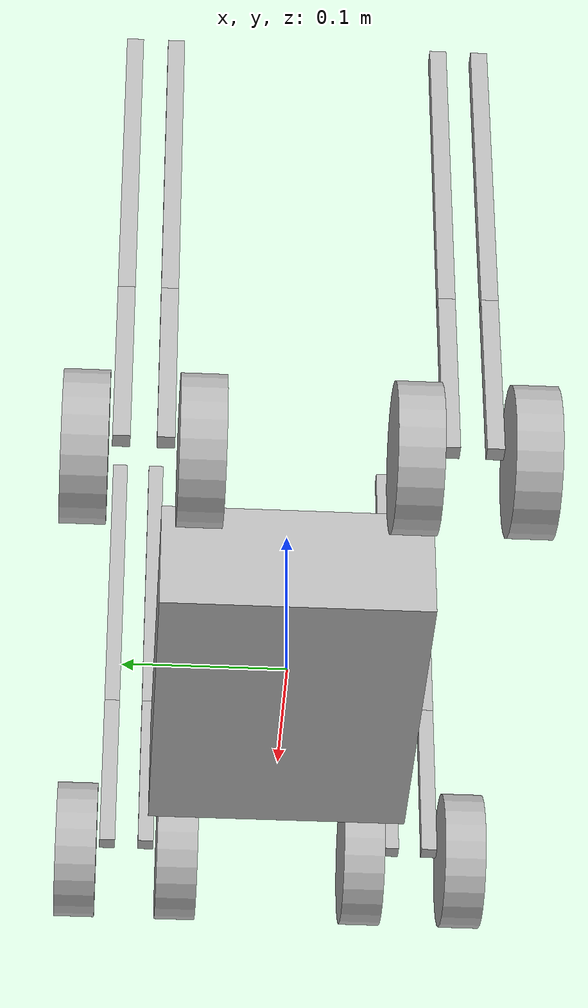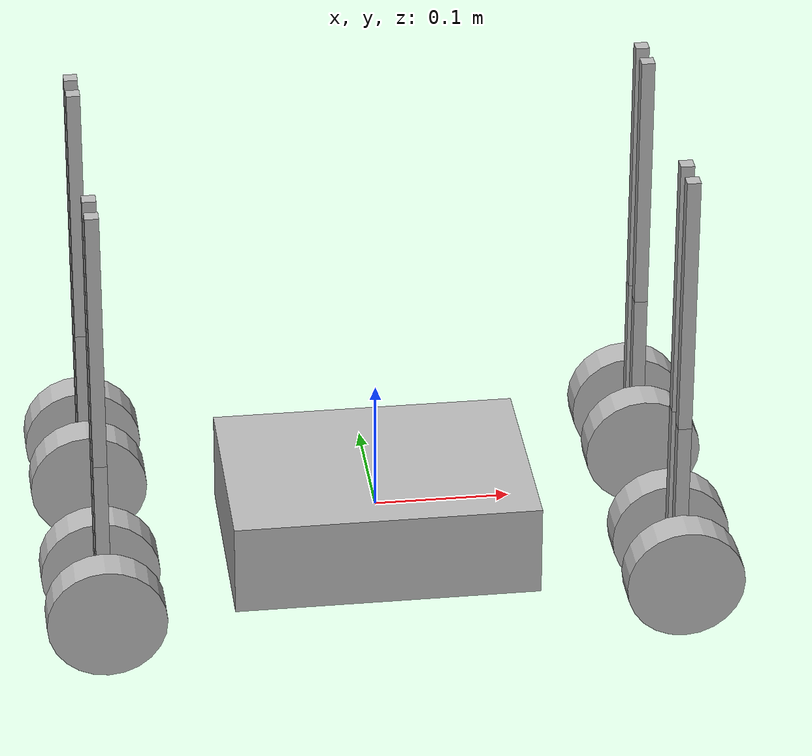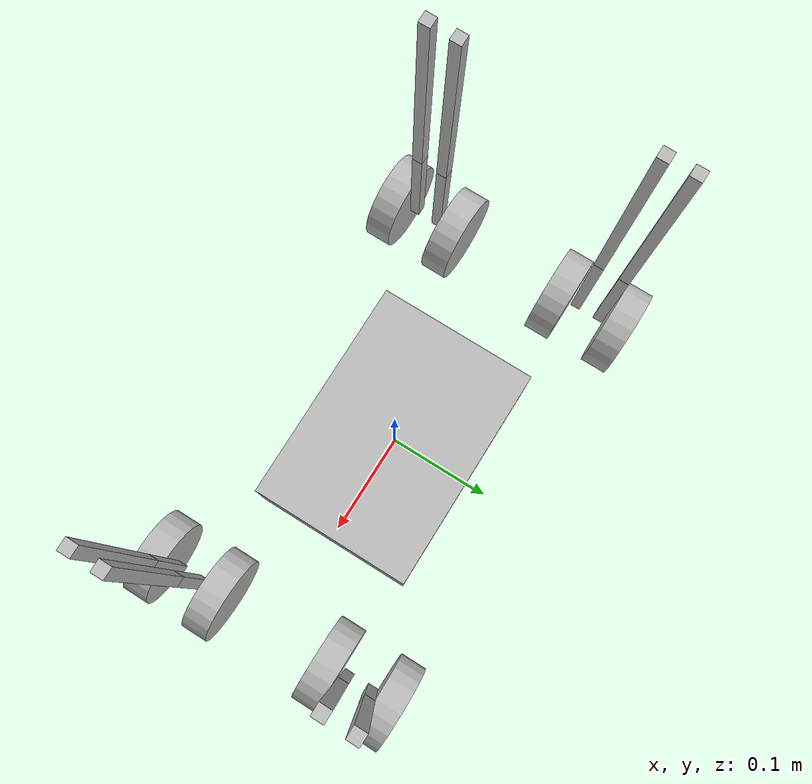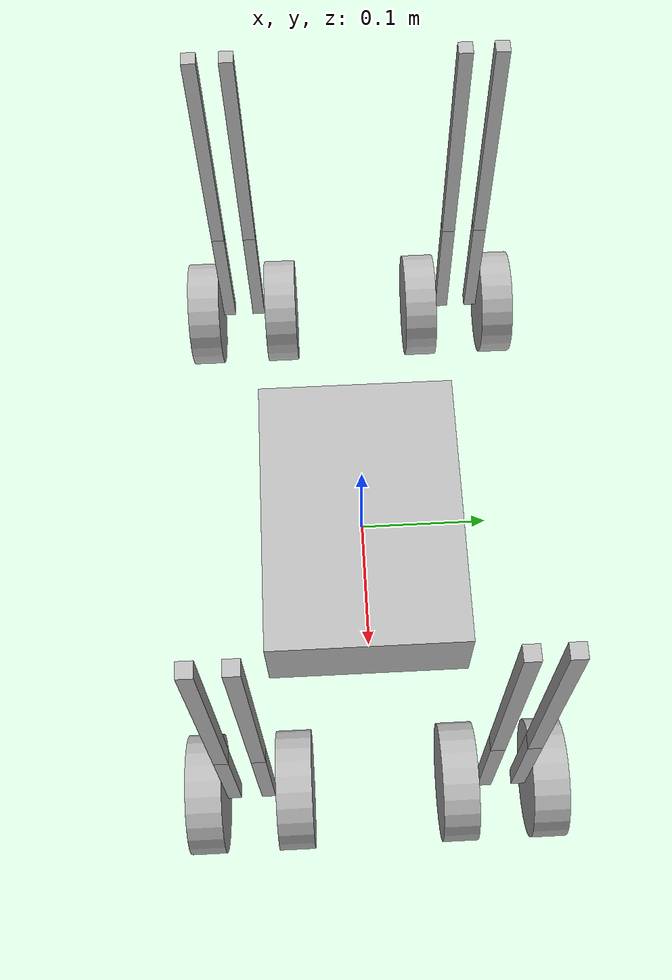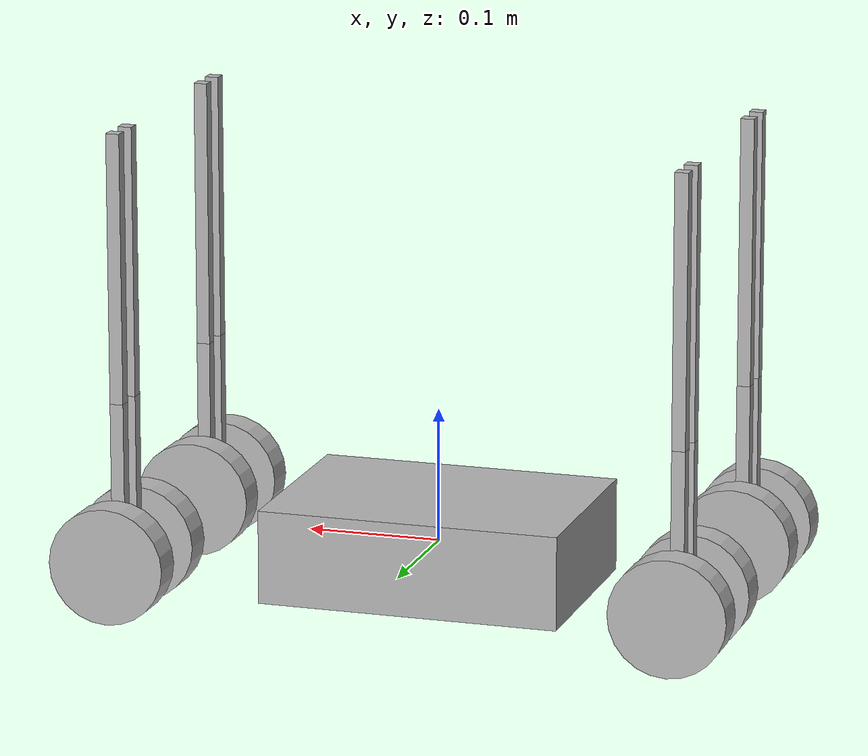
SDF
<sdf version='1.7'>
  <model name='quadruped'>
    <link name='base_chassis_link'>
      <inertial>
        <pose>0 0 0 0 -0 0</pose>
        <mass>3.2</mass>
        <inertia>
          <ixx>1</ixx>
          <ixy>0</ixy>
          <ixz>0</ixz>
          <iyy>1</iyy>
          <iyz>0</iyz>
          <izz>1</izz>
        </inertia>
      </inertial>
      <collision name='base_chassis_link_collision'>
        <pose>0 0 0 0 -0 0</pose>
        <geometry>
          <box>
            <size>0.226 0.16 0.07</size>
          </box>
        </geometry>
      </collision>
      <visual name='base_chassis_link_visual'>
        <pose>0 0 0 0 -0 0</pose>
        <geometry>
          <box>
            <size>0.226 0.16 0.07</size>
          </box>
        </geometry>
      </visual>
    </link>
    <joint name='motor_back_leftL_joint' type='revolute'>
      <pose relative_to='base_chassis_link'>-0.21 0.06 0 1.57075 -0 0</pose>
      <parent>base_chassis_link</parent>
      <child>motor_back_leftL_link</child>
      <axis>
        <xyz>0 0 1</xyz>
        <limit>
          <effort>100</effort>
          <velocity>100</velocity>
          <lower>-1e+16</lower>
          <upper>1e+16</upper>
        </limit>
        <dynamics>
          <spring_reference>0</spring_reference>
          <spring_stiffness>0</spring_stiffness>
        </dynamics>
      </axis>
    </joint>
    <link name='motor_back_leftL_link'>
      <pose relative_to='motor_back_leftL_joint'>0 0 0 0 -0 0</pose>
      <inertial>
        <pose>0 0.01 -0.003333 0 -0 0</pose>
        <mass>0.3</mass>
        <inertia>
          <ixx>2.00017</ixx>
          <ixy>0</ixy>
          <ixz>0</ixz>
          <iyy>2.00002</iyy>
          <iyz>5e-05</iyz>
          <izz>2.00015</izz>
        </inertia>
      </inertial>
      <collision name='motor_back_leftL_link_collision'>
        <pose>0 0 0 0 -0 0</pose>
        <geometry>
          <cylinder>
            <length>0.026</length>
            <radius>0.0434</radius>
          </cylinder>
        </geometry>
      </collision>
      <collision name='motor_back_leftL_link_fixed_joint_lump__upper_leg_back_leftL_link_collision_1'>
        <pose>0 0.06 -0.02 -1.57075 0 0</pose>
        <geometry>
          <box>
            <size>0.01 0.01 0.11</size>
          </box>
        </geometry>
      </collision>
      <visual name='motor_back_leftL_link_visual'>
        <pose>0 0 0 0 -0 0</pose>
        <geometry>
          <cylinder>
            <length>0.026</length>
            <radius>0.0434</radius>
          </cylinder>
        </geometry>
      </visual>
      <visual name='motor_back_leftL_link_fixed_joint_lump__upper_leg_back_leftL_link_visual_1'>
        <pose>0 0.06 -0.02 -1.57075 0 0</pose>
        <geometry>
          <box>
            <size>0.01 0.01 0.11</size>
          </box>
        </geometry>
      </visual>
    </link>
    <joint name='knee_back_leftL_link' type='revolute'>
      <pose relative_to='motor_back_leftL_link'>0 0.115 -0.019997 -1.57075 0 0</pose>
      <parent>motor_back_leftL_link</parent>
      <child>lower_leg_back_leftL_link</child>
      <axis>
        <xyz>0 1 0</xyz>
        <limit>
          <lower>0</lower>
          <upper>0</upper>
          <effort>100</effort>
          <velocity>100</velocity>
        </limit>
        <dynamics>
          <spring_reference>0</spring_reference>
          <spring_stiffness>0</spring_stiffness>
        </dynamics>
      </axis>
    </joint>
    <link name='lower_leg_back_leftL_link'>
      <pose relative_to='knee_back_leftL_link'>0 0 0 0 -0 0</pose>
      <inertial>
        <pose>0 0 0 0 -0 0</pose>
        <mass>0.05</mass>
        <inertia>
          <ixx>1</ixx>
          <ixy>0</ixy>
          <ixz>0</ixz>
          <iyy>1</iyy>
          <iyz>0</iyz>
          <izz>1</izz>
        </inertia>
      </inertial>
      <collision name='lower_leg_back_leftL_link_collision'>
        <pose>0 0 0.1 0 -0 0</pose>
        <geometry>
          <box>
            <size>0.01 0.01 0.2</size>
          </box>
        </geometry>
      </collision>
      <visual name='lower_leg_back_leftL_link_visual'>
        <pose>0 0 0.1 0 -0 0</pose>
        <geometry>
          <box>
            <size>0.01 0.01 0.2</size>
          </box>
        </geometry>
      </visual>
    </link>
    <joint name='motor_back_leftR_joint' type='revolute'>
      <pose relative_to='base_chassis_link'>-0.21 0.125 0 1.57075 -0 0</pose>
      <parent>base_chassis_link</parent>
      <child>motor_back_leftR_link</child>
      <axis>
        <xyz>0 0 1</xyz>
        <limit>
          <effort>100</effort>
          <velocity>100</velocity>
          <lower>-1e+16</lower>
          <upper>1e+16</upper>
        </limit>
        <dynamics>
          <spring_reference>0</spring_reference>
          <spring_stiffness>0</spring_stiffness>
        </dynamics>
      </axis>
    </joint>
    <link name='motor_back_leftR_link'>
      <pose relative_to='motor_back_leftR_joint'>0 0 0 0 -0 0</pose>
      <inertial>
        <pose>0 0.01 0.003333 0 -0 0</pose>
        <mass>0.3</mass>
        <inertia>
          <ixx>2.00017</ixx>
          <ixy>0</ixy>
          <ixz>0</ixz>
          <iyy>2.00002</iyy>
          <iyz>-5e-05</iyz>
          <izz>2.00015</izz>
        </inertia>
      </inertial>
      <collision name='motor_back_leftR_link_collision'>
        <pose>0 0 0 0 -0 0</pose>
        <geometry>
          <cylinder>
            <length>0.026</length>
            <radius>0.0434</radius>
          </cylinder>
        </geometry>
      </collision>
      <collision name='motor_back_leftR_link_fixed_joint_lump__upper_leg_back_leftR_link_collision_1'>
        <pose>0 0.06 0.02 -1.57075 0 0</pose>
        <geometry>
          <box>
            <size>0.01 0.01 0.11</size>
          </box>
        </geometry>
      </collision>
      <visual name='motor_back_leftR_link_visual'>
        <pose>0 0 0 0 -0 0</pose>
        <geometry>
          <cylinder>
            <length>0.026</length>
            <radius>0.0434</radius>
          </cylinder>
        </geometry>
      </visual>
      <visual name='motor_back_leftR_link_fixed_joint_lump__upper_leg_back_leftR_link_visual_1'>
        <pose>0 0.06 0.02 -1.57075 0 0</pose>
        <geometry>
          <box>
            <size>0.01 0.01 0.11</size>
          </box>
        </geometry>
      </visual>
    </link>
    <joint name='knee_back_leftR_link' type='revolute'>
      <pose relative_to='motor_back_leftR_link'>0 0.115 0.020003 -1.57075 0 0</pose>
      <parent>motor_back_leftR_link</parent>
      <child>lower_leg_back_leftR_link</child>
      <axis>
        <xyz>0 1 0</xyz>
        <limit>
          <lower>0</lower>
          <upper>0</upper>
          <effort>100</effort>
          <velocity>100</velocity>
        </limit>
        <dynamics>
          <spring_reference>0</spring_reference>
          <spring_stiffness>0</spring_stiffness>
        </dynamics>
      </axis>
    </joint>
    <link name='lower_leg_back_leftR_link'>
      <pose relative_to='knee_back_leftR_link'>0 0 0 0 -0 0</pose>
      <inertial>
        <pose>0 0 0 0 -0 0</pose>
        <mass>0.05</mass>
        <inertia>
          <ixx>1</ixx>
          <ixy>0</ixy>
          <ixz>0</ixz>
          <iyy>1</iyy>
          <iyz>0</iyz>
          <izz>1</izz>
        </inertia>
      </inertial>
      <collision name='lower_leg_back_leftR_link_collision'>
        <pose>0 0 0.1 0 -0 0</pose>
        <geometry>
          <box>
            <size>0.01 0.01 0.2</size>
          </box>
        </geometry>
      </collision>
      <visual name='lower_leg_back_leftR_link_visual'>
        <pose>0 0 0.1 0 -0 0</pose>
        <geometry>
          <box>
            <size>0.01 0.01 0.2</size>
          </box>
        </geometry>
      </visual>
    </link>
    <joint name='motor_back_rightL_joint' type='revolute'>
      <pose relative_to='base_chassis_link'>-0.21 -0.06 0 1.57075 -0 0</pose>
      <parent>base_chassis_link</parent>
      <child>motor_back_rightL_link</child>
      <axis>
        <xyz>0 0 1</xyz>
        <limit>
          <effort>100</effort>
          <velocity>100</velocity>
          <lower>-1e+16</lower>
          <upper>1e+16</upper>
        </limit>
        <dynamics>
          <spring_reference>0</spring_reference>
          <spring_stiffness>0</spring_stiffness>
        </dynamics>
      </axis>
    </joint>
    <link name='motor_back_rightL_link'>
      <pose relative_to='motor_back_rightL_joint'>0 0 0 0 -0 0</pose>
      <inertial>
        <pose>0 0.01 0.003333 0 -0 0</pose>
        <mass>0.3</mass>
        <inertia>
          <ixx>2.00017</ixx>
          <ixy>0</ixy>
          <ixz>0</ixz>
          <iyy>2.00002</iyy>
          <iyz>-5e-05</iyz>
          <izz>2.00015</izz>
        </inertia>
      </inertial>
      <collision name='motor_back_rightL_link_collision'>
        <pose>0 0 0 0 -0 0</pose>
        <geometry>
          <cylinder>
            <length>0.026</length>
            <radius>0.0434</radius>
          </cylinder>
        </geometry>
      </collision>
      <collision name='motor_back_rightL_link_fixed_joint_lump__upper_leg_back_rightL_link_collision_1'>
        <pose>0 0.06 0.02 -1.57075 0 0</pose>
        <geometry>
          <box>
            <size>0.01 0.01 0.11</size>
          </box>
        </geometry>
      </collision>
      <visual name='motor_back_rightL_link_visual'>
        <pose>0 0 0 0 -0 0</pose>
        <geometry>
          <cylinder>
            <length>0.026</length>
            <radius>0.0434</radius>
          </cylinder>
        </geometry>
      </visual>
      <visual name='motor_back_rightL_link_fixed_joint_lump__upper_leg_back_rightL_link_visual_1'>
        <pose>0 0.06 0.02 -1.57075 0 0</pose>
        <geometry>
          <box>
            <size>0.01 0.01 0.11</size>
          </box>
        </geometry>
      </visual>
    </link>
    <joint name='knee_back_rightL_link' type='revolute'>
      <pose relative_to='motor_back_rightL_link'>0 0.115 0.020003 -1.57075 0 0</pose>
      <parent>motor_back_rightL_link</parent>
      <child>lower_leg_back_rightL_link</child>
      <axis>
        <xyz>0 1 0</xyz>
        <limit>
          <lower>0</lower>
          <upper>0</upper>
          <effort>100</effort>
          <velocity>100</velocity>
        </limit>
        <dynamics>
          <spring_reference>0</spring_reference>
          <spring_stiffness>0</spring_stiffness>
        </dynamics>
      </axis>
    </joint>
    <link name='lower_leg_back_rightL_link'>
      <pose relative_to='knee_back_rightL_link'>0 0 0 0 -0 0</pose>
      <inertial>
        <pose>0 0 0 0 -0 0</pose>
        <mass>0.05</mass>
        <inertia>
          <ixx>1</ixx>
          <ixy>0</ixy>
          <ixz>0</ixz>
          <iyy>1</iyy>
          <iyz>0</iyz>
          <izz>1</izz>
        </inertia>
      </inertial>
      <collision name='lower_leg_back_rightL_link_collision'>
        <pose>0 0 0.1 0 -0 0</pose>
        <geometry>
          <box>
            <size>0.01 0.01 0.2</size>
          </box>
        </geometry>
      </collision>
      <visual name='lower_leg_back_rightL_link_visual'>
        <pose>0 0 0.1 0 -0 0</pose>
        <geometry>
          <box>
            <size>0.01 0.01 0.2</size>
          </box>
        </geometry>
      </visual>
    </link>
    <joint name='motor_back_rightR_joint' type='revolute'>
      <pose relative_to='base_chassis_link'>-0.21 -0.125 0 1.57075 -0 0</pose>
      <parent>base_chassis_link</parent>
      <child>motor_back_rightR_link</child>
      <axis>
        <xyz>0 0 1</xyz>
        <limit>
          <effort>100</effort>
          <velocity>100</velocity>
          <lower>-1e+16</lower>
          <upper>1e+16</upper>
        </limit>
        <dynamics>
          <spring_reference>0</spring_reference>
          <spring_stiffness>0</spring_stiffness>
        </dynamics>
      </axis>
    </joint>
    <link name='motor_back_rightR_link'>
      <pose relative_to='motor_back_rightR_joint'>0 0 0 0 -0 0</pose>
      <inertial>
        <pose>0 0.01 -0.003333 0 -0 0</pose>
        <mass>0.3</mass>
        <inertia>
          <ixx>2.00017</ixx>
          <ixy>0</ixy>
          <ixz>0</ixz>
          <iyy>2.00002</iyy>
          <iyz>5e-05</iyz>
          <izz>2.00015</izz>
        </inertia>
      </inertial>
      <collision name='motor_back_rightR_link_collision'>
        <pose>0 0 0 0 -0 0</pose>
        <geometry>
          <cylinder>
            <length>0.026</length>
            <radius>0.0434</radius>
          </cylinder>
        </geometry>
      </collision>
      <collision name='motor_back_rightR_link_fixed_joint_lump__upper_leg_back_rightR_link_collision_1'>
        <pose>0 0.06 -0.02 -1.57075 0 0</pose>
        <geometry>
          <box>
            <size>0.01 0.01 0.11</size>
          </box>
        </geometry>
      </collision>
      <visual name='motor_back_rightR_link_visual'>
        <pose>0 0 0 0 -0 0</pose>
        <geometry>
          <cylinder>
            <length>0.026</length>
            <radius>0.0434</radius>
          </cylinder>
        </geometry>
      </visual>
      <visual name='motor_back_rightR_link_fixed_joint_lump__upper_leg_back_rightR_link_visual_1'>
        <pose>0 0.06 -0.02 -1.57075 0 0</pose>
        <geometry>
          <box>
            <size>0.01 0.01 0.11</size>
          </box>
        </geometry>
      </visual>
    </link>
    <joint name='knee_back_rightR_link' type='revolute'>
      <pose relative_to='motor_back_rightR_link'>0 0.115 -0.019997 -1.57075 0 0</pose>
      <parent>motor_back_rightR_link</parent>
      <child>lower_leg_back_rightR_link</child>
      <axis>
        <xyz>0 1 0</xyz>
        <limit>
          <lower>0</lower>
          <upper>0</upper>
          <effort>100</effort>
          <velocity>100</velocity>
        </limit>
        <dynamics>
          <spring_reference>0</spring_reference>
          <spring_stiffness>0</spring_stiffness>
        </dynamics>
      </axis>
    </joint>
    <link name='lower_leg_back_rightR_link'>
      <pose relative_to='knee_back_rightR_link'>0 0 0 0 -0 0</pose>
      <inertial>
        <pose>0 0 0 0 -0 0</pose>
        <mass>0.05</mass>
        <inertia>
          <ixx>1</ixx>
          <ixy>0</ixy>
          <ixz>0</ixz>
          <iyy>1</iyy>
          <iyz>0</iyz>
          <izz>1</izz>
        </inertia>
      </inertial>
      <collision name='lower_leg_back_rightR_link_collision'>
        <pose>0 0 0.1 0 -0 0</pose>
        <geometry>
          <box>
            <size>0.01 0.01 0.2</size>
          </box>
        </geometry>
      </collision>
      <visual name='lower_leg_back_rightR_link_visual'>
        <pose>0 0 0.1 0 -0 0</pose>
        <geometry>
          <box>
            <size>0.01 0.01 0.2</size>
          </box>
        </geometry>
      </visual>
    </link>
    <joint name='motor_front_leftL_joint' type='revolute'>
      <pose relative_to='base_chassis_link'>0.21 0.06 0 1.57075 -0 0</pose>
      <parent>base_chassis_link</parent>
      <child>motor_front_leftL_link</child>
      <axis>
        <xyz>0 0 1</xyz>
        <limit>
          <effort>100</effort>
          <velocity>100</velocity>
          <lower>-1e+16</lower>
          <upper>1e+16</upper>
        </limit>
        <dynamics>
          <spring_reference>0</spring_reference>
          <spring_stiffness>0</spring_stiffness>
        </dynamics>
      </axis>
    </joint>
    <link name='motor_front_leftL_link'>
      <pose relative_to='motor_front_leftL_joint'>0 0 0 0 -0 0</pose>
      <inertial>
        <pose>0 0.01 -0.003333 0 -0 0</pose>
        <mass>0.3</mass>
        <inertia>
          <ixx>2.00017</ixx>
          <ixy>0</ixy>
          <ixz>0</ixz>
          <iyy>2.00002</iyy>
          <iyz>5e-05</iyz>
          <izz>2.00015</izz>
        </inertia>
      </inertial>
      <collision name='motor_front_leftL_link_collision'>
        <pose>0 0 0 0 -0 0</pose>
        <geometry>
          <cylinder>
            <length>0.026</length>
            <radius>0.0434</radius>
          </cylinder>
        </geometry>
      </collision>
      <collision name='motor_front_leftL_link_fixed_joint_lump__upper_leg_front_leftL_link_collision_1'>
        <pose>0 0.06 -0.02 -1.57075 0 0</pose>
        <geometry>
          <box>
            <size>0.01 0.01 0.11</size>
          </box>
        </geometry>
      </collision>
      <visual name='motor_front_leftL_link_visual'>
        <pose>0 0 0 0 -0 0</pose>
        <geometry>
          <cylinder>
            <length>0.026</length>
            <radius>0.0434</radius>
          </cylinder>
        </geometry>
      </visual>
      <visual name='motor_front_leftL_link_fixed_joint_lump__upper_leg_front_leftL_link_visual_1'>
        <pose>0 0.06 -0.02 -1.57075 0 0</pose>
        <geometry>
          <box>
            <size>0.01 0.01 0.11</size>
          </box>
        </geometry>
      </visual>
    </link>
    <joint name='knee_front_leftL_link' type='revolute'>
      <pose relative_to='motor_front_leftL_link'>0 0.115 -0.019997 -1.57075 0 0</pose>
      <parent>motor_front_leftL_link</parent>
      <child>lower_leg_front_leftL_link</child>
      <axis>
        <xyz>0 1 0</xyz>
        <limit>
          <lower>0</lower>
          <upper>0</upper>
          <effort>100</effort>
          <velocity>100</velocity>
        </limit>
        <dynamics>
          <spring_reference>0</spring_reference>
          <spring_stiffness>0</spring_stiffness>
        </dynamics>
      </axis>
    </joint>
    <link name='lower_leg_front_leftL_link'>
      <pose relative_to='knee_front_leftL_link'>0 0 0 0 -0 0</pose>
      <inertial>
        <pose>0 0 0 0 -0 0</pose>
        <mass>0.05</mass>
        <inertia>
          <ixx>1</ixx>
          <ixy>0</ixy>
          <ixz>0</ixz>
          <iyy>1</iyy>
          <iyz>0</iyz>
          <izz>1</izz>
        </inertia>
      </inertial>
      <collision name='lower_leg_front_leftL_link_collision'>
        <pose>0 0 0.1 0 -0 0</pose>
        <geometry>
          <box>
            <size>0.01 0.01 0.2</size>
          </box>
        </geometry>
      </collision>
      <visual name='lower_leg_front_leftL_link_visual'>
        <pose>0 0 0.1 0 -0 0</pose>
        <geometry>
          <box>
            <size>0.01 0.01 0.2</size>
          </box>
        </geometry>
      </visual>
    </link>
    <joint name='motor_front_leftR_joint' type='revolute'>
      <pose relative_to='base_chassis_link'>0.21 0.125 0 1.57075 -0 0</pose>
      <parent>base_chassis_link</parent>
      <child>motor_front_leftR_link</child>
      <axis>
        <xyz>0 0 1</xyz>
        <limit>
          <effort>100</effort>
          <velocity>100</velocity>
          <lower>-1e+16</lower>
          <upper>1e+16</upper>
        </limit>
        <dynamics>
          <spring_reference>0</spring_reference>
          <spring_stiffness>0</spring_stiffness>
        </dynamics>
      </axis>
    </joint>
    <link name='motor_front_leftR_link'>
      <pose relative_to='motor_front_leftR_joint'>0 0 0 0 -0 0</pose>
      <inertial>
        <pose>0 0.01 0.003333 0 -0 0</pose>
        <mass>0.3</mass>
        <inertia>
          <ixx>2.00017</ixx>
          <ixy>0</ixy>
          <ixz>0</ixz>
          <iyy>2.00002</iyy>
          <iyz>-5e-05</iyz>
          <izz>2.00015</izz>
        </inertia>
      </inertial>
      <collision name='motor_front_leftR_link_collision'>
        <pose>0 0 0 0 -0 0</pose>
        <geometry>
          <cylinder>
            <length>0.026</length>
            <radius>0.0434</radius>
          </cylinder>
        </geometry>
      </collision>
      <collision name='motor_front_leftR_link_fixed_joint_lump__upper_leg_front_leftR_link_collision_1'>
        <pose>0 0.06 0.02 -1.57075 0 0</pose>
        <geometry>
          <box>
            <size>0.01 0.01 0.11</size>
          </box>
        </geometry>
      </collision>
      <visual name='motor_front_leftR_link_visual'>
        <pose>0 0 0 0 -0 0</pose>
        <geometry>
          <cylinder>
            <length>0.026</length>
            <radius>0.0434</radius>
          </cylinder>
        </geometry>
      </visual>
      <visual name='motor_front_leftR_link_fixed_joint_lump__upper_leg_front_leftR_link_visual_1'>
        <pose>0 0.06 0.02 -1.57075 0 0</pose>
        <geometry>
          <box>
            <size>0.01 0.01 0.11</size>
          </box>
        </geometry>
      </visual>
    </link>
    <joint name='knee_front_leftR_link' type='revolute'>
      <pose relative_to='motor_front_leftR_link'>0 0.115 0.020003 -1.57075 0 0</pose>
      <parent>motor_front_leftR_link</parent>
      <child>lower_leg_front_leftR_link</child>
      <axis>
        <xyz>0 1 0</xyz>
        <limit>
          <lower>0</lower>
          <upper>0</upper>
          <effort>100</effort>
          <velocity>100</velocity>
        </limit>
        <dynamics>
          <spring_reference>0</spring_reference>
          <spring_stiffness>0</spring_stiffness>
        </dynamics>
      </axis>
    </joint>
    <link name='lower_leg_front_leftR_link'>
      <pose relative_to='knee_front_leftR_link'>0 0 0 0 -0 0</pose>
      <inertial>
        <pose>0 0 0 0 -0 0</pose>
        <mass>0.05</mass>
        <inertia>
          <ixx>1</ixx>
          <ixy>0</ixy>
          <ixz>0</ixz>
          <iyy>1</iyy>
          <iyz>0</iyz>
          <izz>1</izz>
        </inertia>
      </inertial>
      <collision name='lower_leg_front_leftR_link_collision'>
        <pose>0 0 0.1 0 -0 0</pose>
        <geometry>
          <box>
            <size>0.01 0.01 0.2</size>
          </box>
        </geometry>
      </collision>
      <visual name='lower_leg_front_leftR_link_visual'>
        <pose>0 0 0.1 0 -0 0</pose>
        <geometry>
          <box>
            <size>0.01 0.01 0.2</size>
          </box>
        </geometry>
      </visual>
    </link>
    <joint name='motor_front_rightL_joint' type='revolute'>
      <pose relative_to='base_chassis_link'>0.21 -0.06 0 1.57075 -0 0</pose>
      <parent>base_chassis_link</parent>
      <child>motor_front_rightL_link</child>
      <axis>
        <xyz>0 0 1</xyz>
        <limit>
          <effort>100</effort>
          <velocity>100</velocity>
          <lower>-1e+16</lower>
          <upper>1e+16</upper>
        </limit>
        <dynamics>
          <spring_reference>0</spring_reference>
          <spring_stiffness>0</spring_stiffness>
        </dynamics>
      </axis>
    </joint>
    <link name='motor_front_rightL_link'>
      <pose relative_to='motor_front_rightL_joint'>0 0 0 0 -0 0</pose>
      <inertial>
        <pose>0 0.01 0.003333 0 -0 0</pose>
        <mass>0.3</mass>
        <inertia>
          <ixx>2.00017</ixx>
          <ixy>0</ixy>
          <ixz>0</ixz>
          <iyy>2.00002</iyy>
          <iyz>-5e-05</iyz>
          <izz>2.00015</izz>
        </inertia>
      </inertial>
      <collision name='motor_front_rightL_link_collision'>
        <pose>0 0 0 0 -0 0</pose>
        <geometry>
          <cylinder>
            <length>0.026</length>
            <radius>0.0434</radius>
          </cylinder>
        </geometry>
      </collision>
      <collision name='motor_front_rightL_link_fixed_joint_lump__upper_leg_front_rightL_link_collision_1'>
        <pose>0 0.06 0.02 -1.57075 0 0</pose>
        <geometry>
          <box>
            <size>0.01 0.01 0.11</size>
          </box>
        </geometry>
      </collision>
      <visual name='motor_front_rightL_link_visual'>
        <pose>0 0 0 0 -0 0</pose>
        <geometry>
          <cylinder>
            <length>0.026</length>
            <radius>0.0434</radius>
          </cylinder>
        </geometry>
      </visual>
      <visual name='motor_front_rightL_link_fixed_joint_lump__upper_leg_front_rightL_link_visual_1'>
        <pose>0 0.06 0.02 -1.57075 0 0</pose>
        <geometry>
          <box>
            <size>0.01 0.01 0.11</size>
          </box>
        </geometry>
      </visual>
    </link>
    <joint name='knee_front_rightL_link' type='revolute'>
      <pose relative_to='motor_front_rightL_link'>0 0.115 0.020003 -1.57075 0 0</pose>
      <parent>motor_front_rightL_link</parent>
      <child>lower_leg_front_rightL_link</child>
      <axis>
        <xyz>0 1 0</xyz>
        <limit>
          <lower>0</lower>
          <upper>0</upper>
          <effort>100</effort>
          <velocity>100</velocity>
        </limit>
        <dynamics>
          <spring_reference>0</spring_reference>
          <spring_stiffness>0</spring_stiffness>
        </dynamics>
      </axis>
    </joint>
    <link name='lower_leg_front_rightL_link'>
      <pose relative_to='knee_front_rightL_link'>0 0 0 0 -0 0</pose>
      <inertial>
        <pose>0 0 0 0 -0 0</pose>
        <mass>0.05</mass>
        <inertia>
          <ixx>1</ixx>
          <ixy>0</ixy>
          <ixz>0</ixz>
          <iyy>1</iyy>
          <iyz>0</iyz>
          <izz>1</izz>
        </inertia>
      </inertial>
      <collision name='lower_leg_front_rightL_link_collision'>
        <pose>0 0 0.1 0 -0 0</pose>
        <geometry>
          <box>
            <size>0.01 0.01 0.2</size>
          </box>
        </geometry>
      </collision>
      <visual name='lower_leg_front_rightL_link_visual'>
        <pose>0 0 0.1 0 -0 0</pose>
        <geometry>
          <box>
            <size>0.01 0.01 0.2</size>
          </box>
        </geometry>
      </visual>
    </link>
    <joint name='motor_front_rightR_joint' type='revolute'>
      <pose relative_to='base_chassis_link'>0.21 -0.125 0 1.57075 -0 0</pose>
      <parent>base_chassis_link</parent>
      <child>motor_front_rightR_link</child>
      <axis>
        <xyz>0 0 1</xyz>
        <limit>
          <effort>100</effort>
          <velocity>100</velocity>
          <lower>-1e+16</lower>
          <upper>1e+16</upper>
        </limit>
        <dynamics>
          <spring_reference>0</spring_reference>
          <spring_stiffness>0</spring_stiffness>
        </dynamics>
      </axis>
    </joint>
    <link name='motor_front_rightR_link'>
      <pose relative_to='motor_front_rightR_joint'>0 0 0 0 -0 0</pose>
      <inertial>
        <pose>0 0.01 -0.003333 0 -0 0</pose>
        <mass>0.3</mass>
        <inertia>
          <ixx>2.00017</ixx>
          <ixy>0</ixy>
          <ixz>0</ixz>
          <iyy>2.00002</iyy>
          <iyz>5e-05</iyz>
          <izz>2.00015</izz>
        </inertia>
      </inertial>
      <collision name='motor_front_rightR_link_collision'>
        <pose>0 0 0 0 -0 0</pose>
        <geometry>
          <cylinder>
            <length>0.026</length>
            <radius>0.0434</radius>
          </cylinder>
        </geometry>
      </collision>
      <collision name='motor_front_rightR_link_fixed_joint_lump__upper_leg_front_rightR_link_collision_1'>
        <pose>0 0.06 -0.02 -1.57075 0 0</pose>
        <geometry>
          <box>
            <size>0.01 0.01 0.11</size>
          </box>
        </geometry>
      </collision>
      <visual name='motor_front_rightR_link_visual'>
        <pose>0 0 0 0 -0 0</pose>
        <geometry>
          <cylinder>
            <length>0.026</length>
            <radius>0.0434</radius>
          </cylinder>
        </geometry>
      </visual>
      <visual name='motor_front_rightR_link_fixed_joint_lump__upper_leg_front_rightR_link_visual_1'>
        <pose>0 0.06 -0.02 -1.57075 0 0</pose>
        <geometry>
          <box>
            <size>0.01 0.01 0.11</size>
          </box>
        </geometry>
      </visual>
    </link>
    <joint name='knee_front_rightR_link' type='revolute'>
      <pose relative_to='motor_front_rightR_link'>0 0.115 -0.019997 -1.57075 0 0</pose>
      <parent>motor_front_rightR_link</parent>
      <child>lower_leg_front_rightR_link</child>
      <axis>
        <xyz>0 1 0</xyz>
        <limit>
          <lower>0</lower>
          <upper>0</upper>
          <effort>100</effort>
          <velocity>100</velocity>
        </limit>
        <dynamics>
          <spring_reference>0</spring_reference>
          <spring_stiffness>0</spring_stiffness>
        </dynamics>
      </axis>
    </joint>
    <link name='lower_leg_front_rightR_link'>
      <pose relative_to='knee_front_rightR_link'>0 0 0 0 -0 0</pose>
      <inertial>
        <pose>0 0 0 0 -0 0</pose>
        <mass>0.05</mass>
        <inertia>
          <ixx>1</ixx>
          <ixy>0</ixy>
          <ixz>0</ixz>
          <iyy>1</iyy>
          <iyz>0</iyz>
          <izz>1</izz>
        </inertia>
      </inertial>
      <collision name='lower_leg_front_rightR_link_collision'>
        <pose>0 0 0.1 0 -0 0</pose>
        <geometry>
          <box>
            <size>0.01 0.01 0.2</size>
          </box>
        </geometry>
      </collision>
      <visual name='lower_leg_front_rightR_link_visual'>
        <pose>0 0 0.1 0 -0 0</pose>
        <geometry>
          <box>
            <size>0.01 0.01 0.2</size>
          </box>
        </geometry>
      </visual>
    </link>
  </model>
</sdf>
